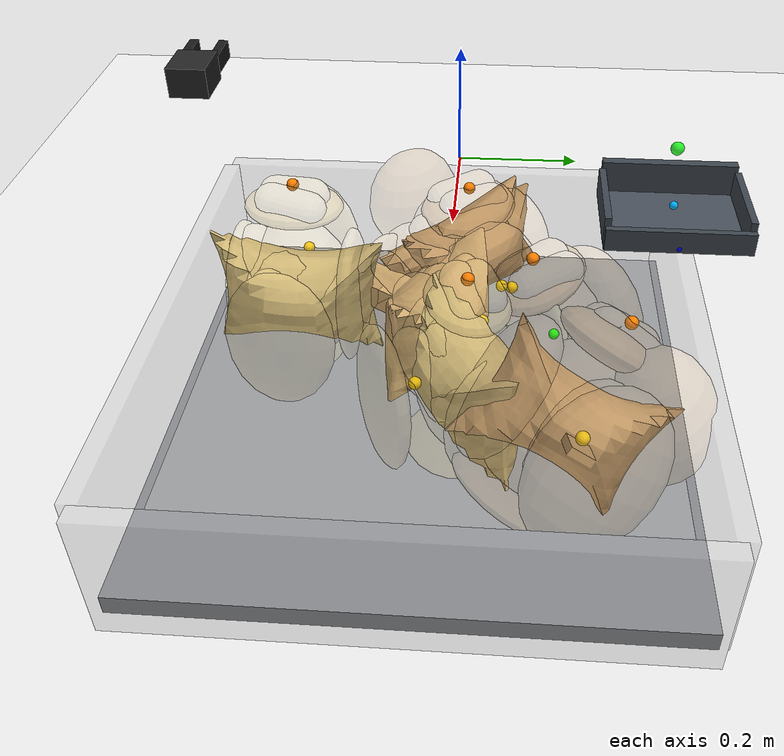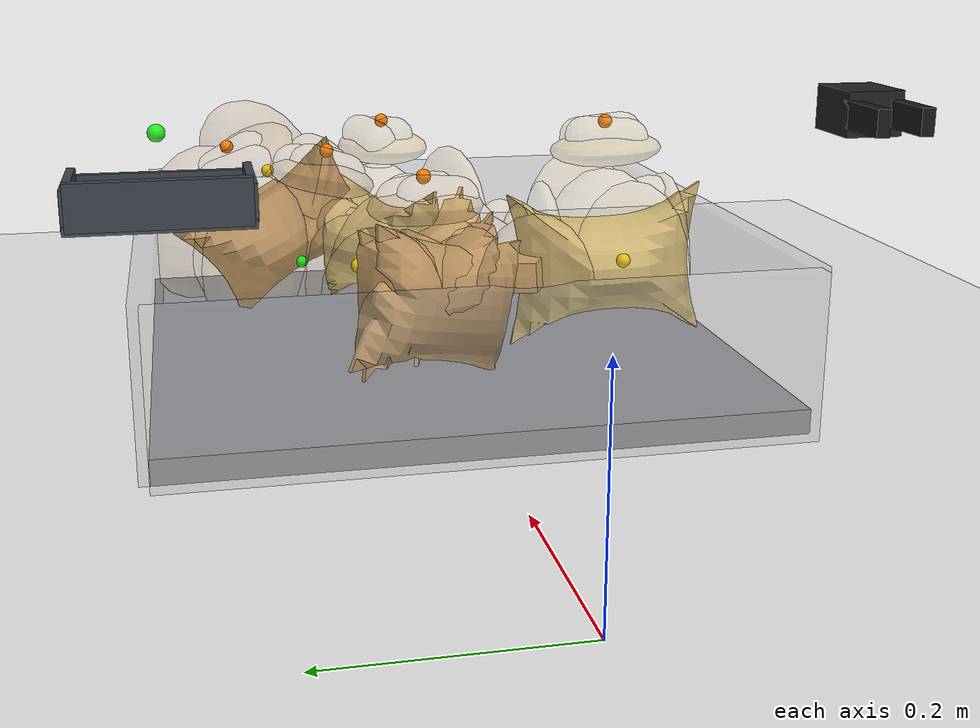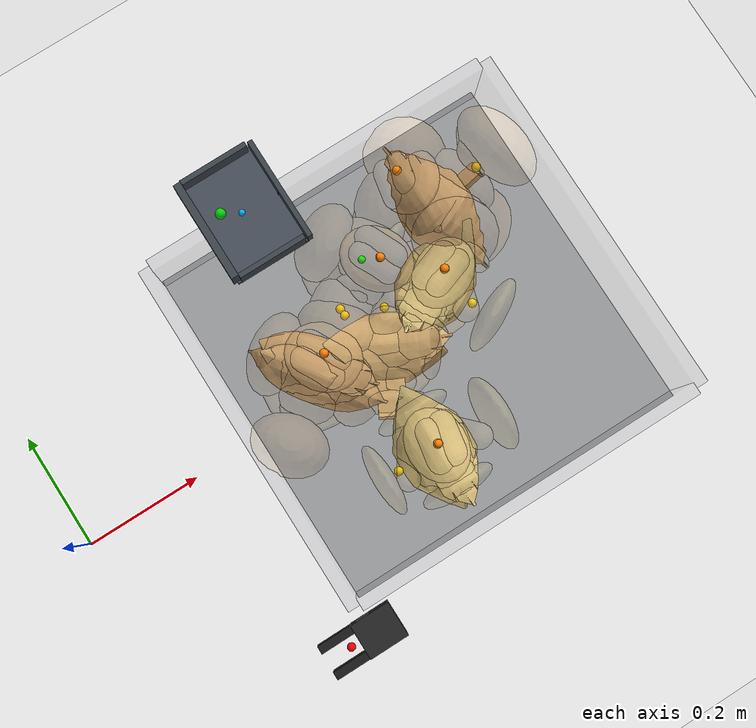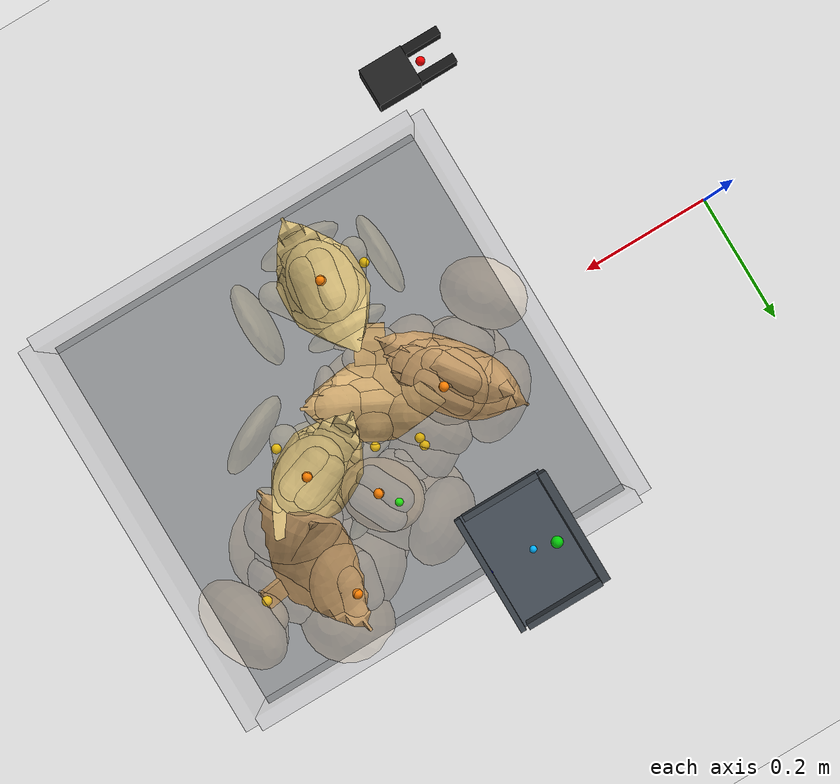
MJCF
<mujoco model="eccentric_fill_seed12">
  <compiler angle="radian" coordinate="local" inertiafromgeom="true" meshdir="D:/Michael/2025/01.Research/01.Parceldetection/16.Pybullet/bullet3-master (1)/bullet3-master/examples/pybullet/examples/DeformableTest/Sackcodex2/object"/>
  <option timestep="0.002" gravity="0 0 -9.81" integrator="implicitfast" iterations="100" tolerance="1e-8"/>
  <size memory="768M" nconmax="12000"/>

  <visual>
    <global azimuth="128" elevation="-20" offwidth="1280" offheight="720"/>
    <headlight ambient="0.34 0.34 0.34" diffuse="0.78 0.78 0.78" specular="0.15 0.15 0.15"/>
    <rgba haze="0.11 0.13 0.18 1"/>
  </visual>

  <default>
    <geom condim="4" friction="1.15 0.03 0.01" margin="0.003" solimp="0.93 0.98 0.003" solref="0.012 1"/>
    <joint damping="1.2" armature="0.002"/>
    <position kp="2500" forcelimited="true" forcerange="-420 420"/>
    <motor ctrllimited="true"/>
  </default>

  <asset>
    <mesh name="sack_0_visual_mesh" file="sack3.obj" scale="0.0731 0.0731 0.0752"/>
    <mesh name="sack_1_visual_mesh" file="sack10.obj" scale="0.0712 0.0712 0.0726"/>
    <mesh name="sack_2_visual_mesh" file="sack6Apply.obj" scale="0.0698 0.0698 0.0739"/>
    <mesh name="sack_3_visual_mesh" file="sack8.obj" scale="0.0731 0.0731 0.0796"/>
    <mesh name="sack_4_visual_mesh" file="sack8.obj" scale="0.0749 0.0749 0.0827"/>
    <mesh name="sack_5_visual_mesh" file="sack9.obj" scale="0.0736 0.0736 0.0767"/>
  </asset>

  <worldbody>
    <light name="key" pos="0.85 0.15 1.8" dir="-0.2 -0.1 -1" directional="true"/>
    <geom name="floor" type="plane" size="2 2 0.1" rgba="0.93 0.93 0.93 1"/>
    <geom name="work_pad" type="box" pos="0.62 0 0.012" size="0.30 0.30 0.012" rgba="0.60 0.61 0.62 1" friction="1.4 0.05 0.01"/>
    <geom name="corral_front" type="box" pos="0.93 0.00 0.08" size="0.010 0.30 0.08" rgba="0.55 0.55 0.58 0.22" friction="1.0 0.03 0.01"/>
    <geom name="corral_back" type="box" pos="0.31 0.00 0.08" size="0.010 0.30 0.08" rgba="0.55 0.55 0.58 0.18" friction="1.0 0.03 0.01"/>
    <geom name="corral_left" type="box" pos="0.62 0.30 0.08" size="0.30 0.010 0.08" rgba="0.55 0.55 0.58 0.14" friction="1.0 0.03 0.01"/>
    <geom name="corral_right" type="box" pos="0.62 -0.30 0.08" size="0.30 0.010 0.08" rgba="0.55 0.55 0.58 0.14" friction="1.0 0.03 0.01"/>
    <camera name="overview" pos="1.22 0.00 0.92" xyaxes="0 1 0 -0.46 0 0.88"/>

    <body name="gripper_mocap" mocap="true" pos="0.36 -0.33 0.30" quat="0.707107 0 -0.707107 0"/>
    <body name="scoop_mocap" mocap="true" pos="0.42 0.28 0.20" quat="1 0 0 0"/>

    <body name="gripper_ctrl_base" pos="0.36 -0.33 0.30">
      <inertial pos="0 0 0" mass="0.001" diaginertia="1e-6 1e-6 1e-6"/>
      <joint name="gripper_ctrl_x" type="slide" axis="1 0 0" limited="true" range="0.20 1.00"/>
      <body name="gripper_ctrl_y_body">
        <inertial pos="0 0 0" mass="0.001" diaginertia="1e-6 1e-6 1e-6"/>
        <joint name="gripper_ctrl_y" type="slide" axis="0 1 0" limited="true" range="-0.60 0.60"/>
        <body name="gripper_ctrl_z_body">
          <inertial pos="0 0 0" mass="0.001" diaginertia="1e-6 1e-6 1e-6"/>
          <joint name="gripper_ctrl_z" type="slide" axis="0 0 1" limited="true" range="0.04 0.70"/>
          <body name="gripper_ctrl_yaw_body">
            <inertial pos="0 0 0" mass="0.001" diaginertia="1e-6 1e-6 1e-6"/>
            <joint name="gripper_ctrl_yaw" type="hinge" axis="0 0 1" limited="true" range="-3.1416 3.1416"/>
            <body name="gripper_ctrl_pitch_body">
              <inertial pos="0 0 0" mass="0.001" diaginertia="1e-6 1e-6 1e-6"/>
              <joint name="gripper_ctrl_pitch" type="hinge" axis="0 1 0" limited="true" range="-3.1416 3.1416"/>
              <body name="gripper_ctrl_roll_body">
                <inertial pos="0 0 0" mass="0.001" diaginertia="1e-6 1e-6 1e-6"/>
                <joint name="gripper_ctrl_roll" type="hinge" axis="1 0 0" limited="true" range="-3.1416 3.1416"/>
              </body>
            </body>
          </body>
        </body>
      </body>
    </body>

    <body name="scoop_ctrl_base" pos="0.42 0.28 0.20">
      <inertial pos="0 0 0" mass="0.001" diaginertia="1e-6 1e-6 1e-6"/>
      <joint name="scoop_ctrl_x" type="slide" axis="1 0 0" limited="true" range="0.20 1.00"/>
      <body name="scoop_ctrl_y_body">
        <inertial pos="0 0 0" mass="0.001" diaginertia="1e-6 1e-6 1e-6"/>
        <joint name="scoop_ctrl_y" type="slide" axis="0 1 0" limited="true" range="-0.60 0.60"/>
        <body name="scoop_ctrl_z_body">
          <inertial pos="0 0 0" mass="0.001" diaginertia="1e-6 1e-6 1e-6"/>
          <joint name="scoop_ctrl_z" type="slide" axis="0 0 1" limited="true" range="0.04 0.70"/>
          <body name="scoop_ctrl_yaw_body">
            <inertial pos="0 0 0" mass="0.001" diaginertia="1e-6 1e-6 1e-6"/>
            <joint name="scoop_ctrl_yaw" type="hinge" axis="0 0 1" limited="true" range="-3.1416 3.1416"/>
            <body name="scoop_ctrl_pitch_body">
              <inertial pos="0 0 0" mass="0.001" diaginertia="1e-6 1e-6 1e-6"/>
              <joint name="scoop_ctrl_pitch" type="hinge" axis="0 1 0" limited="true" range="-3.1416 3.1416"/>
              <body name="scoop_ctrl_roll_body">
                <inertial pos="0 0 0" mass="0.001" diaginertia="1e-6 1e-6 1e-6"/>
                <joint name="scoop_ctrl_roll" type="hinge" axis="1 0 0" limited="true" range="-3.1416 3.1416"/>
              </body>
            </body>
          </body>
        </body>
      </body>
    </body>

    <body name="gripper_tool" pos="0.36 -0.33 0.30" quat="0.707107 0 -0.707107 0">
      <freejoint name="gripper_tool_free"/>
      <inertial pos="0 0 0.04" mass="0.08" diaginertia="0.0002 0.0002 0.0002"/>
      <geom name="gripper_palm" type="box" pos="0 0 0.030" size="0.020 0.026 0.030" rgba="0.14 0.14 0.14 1"/>
      <body name="left_finger_body" pos="0 0 0.072">
        <joint name="left_finger_slide" type="slide" axis="0 1 0" limited="true" range="0.010 0.040" damping="12"/>
        <geom name="left_finger_geom" type="box" pos="0 0.020 0" size="0.012 0.006 0.040" rgba="0.10 0.10 0.10 1" friction="2.2 0.05 0.01"/>
      </body>
      <body name="right_finger_body" pos="0 0 0.072">
        <joint name="right_finger_slide" type="slide" axis="0 -1 0" limited="true" range="0.010 0.040" damping="12"/>
        <geom name="right_finger_geom" type="box" pos="0 -0.020 0" size="0.012 0.006 0.040" rgba="0.10 0.10 0.10 1" friction="2.2 0.05 0.01"/>
      </body>
      <site name="gripper_pinch_site" pos="0 0 0.074" size="0.006" rgba="1 0 0 1"/>
    </body>

    <body name="scoop_tool" pos="0.42 0.28 0.20" quat="1 0 0 0">
      <freejoint name="scoop_tool_free"/>
      <inertial pos="0 0 0.02" mass="0.10" diaginertia="0.0003 0.0003 0.0003"/>
      <geom name="scoop_plate" type="box" pos="0.062 0 0" size="0.062 0.085 0.004" rgba="0.28 0.31 0.35 1" friction="1.7 0.05 0.01"/>
      <geom name="scoop_lip" type="box" pos="0.126 0 0.014" size="0.004 0.085 0.014" rgba="0.24 0.27 0.30 1" friction="1.7 0.05 0.01"/>
      <geom name="scoop_left_rail" type="box" pos="0.062 0.082 0.018" size="0.056 0.004 0.018" rgba="0.24 0.27 0.30 1"/>
      <geom name="scoop_right_rail" type="box" pos="0.062 -0.082 0.018" size="0.056 0.004 0.018" rgba="0.24 0.27 0.30 1"/>
      <geom name="scoop_backstop" type="box" pos="0.000 0 0.022" size="0.006 0.082 0.022" rgba="0.24 0.27 0.30 1"/>
      <site name="scoop_tip_site" pos="0.126 0 0.005" size="0.005" rgba="0 0 1 1"/>
      <site name="scoop_center_site" pos="0.060 0 0.020" size="0.005" rgba="0 0.7 1 1"/>
      <site name="score_overlay_site" pos="0.030 0 0.080" size="0.008" rgba="0 1 0 0.8"/>
    </body>

    <body name="sack_0" pos="0.6038 0.1422 0.1172" euler="0.2250 0.1212 -0.9438">
      <freejoint name="sack_0_free"/>

      <geom name="sack_0_visual" type="mesh" mesh="sack_0_visual_mesh" rgba="0.760 0.600 0.400 0.92" contype="0" conaffinity="0"/>
      <site name="sack_0_center_site" pos="0 0 0.000" size="0.006" rgba="0 1 0 1"/>
      <site name="sack_0_top_site" pos="0.0014 -0.0043 0.1181" size="0.007" rgba="1 0.5 0 1"/>
      <site name="sack_0_side_site" pos="0.0036 -0.0929 0.018" size="0.007" rgba="1 0.8 0 1"/>

      <geom name="sack_0_core_geom" type="ellipsoid" pos="0 0 0.0059" size="0.0431 0.0340 0.0742" mass="0.8147" rgba="0.760 0.600 0.400 0.12" friction="1.0 0.03 0.01"/>
      <geom name="sack_0_core_front" type="capsule" fromto="-0.0204 0 -0.0180 0.0536 0 0.0580" size="0.0286" mass="0.1940" rgba="0.760 0.600 0.400 0.10"/>
      <geom name="sack_0_core_left" type="capsule" fromto="-0.016 0.0648 -0.012 0.020 0.1249 0.054" size="0.0209" mass="0.3492" rgba="0.760 0.600 0.400 0.10"/>
      <geom name="sack_0_core_right" type="capsule" fromto="-0.016 -0.0648 -0.012 0.020 -0.1249 0.054" size="0.0187" mass="0.3492" rgba="0.760 0.600 0.400 0.10"/>

      <!-- 자루의 외형은 둥근 shell lobe로 보이게 하고, contact proxy는 반투명하게 숨긴다. -->
      <geom name="sack_0_shell_main_visual" type="ellipsoid" pos="0.0018 0.0029 -0.0030" size="0.0714 0.0636 0.0933" rgba="0.760 0.600 0.400 0.16" contype="0" conaffinity="0"/>
      <geom name="sack_0_shell_left_visual" type="ellipsoid" pos="0.0040 0.1006 0.0020" size="0.0485 0.0675 0.0765" rgba="0.760 0.600 0.400 0.14" contype="0" conaffinity="0"/>
      <geom name="sack_0_shell_right_visual" type="ellipsoid" pos="0.0040 -0.0410 0.0000" size="0.0457 0.0374 0.0746" rgba="0.760 0.600 0.400 0.12" contype="0" conaffinity="0"/>
      <geom name="sack_0_top_left_crown_visual" type="capsule" fromto="-0.0227 0.0161 0.0982 0.0227 0.0081 0.1022" size="0.0207" rgba="0.760 0.600 0.400 0.14" contype="0" conaffinity="0"/>
      <geom name="sack_0_top_right_crown_visual" type="capsule" fromto="-0.0227 -0.0081 0.1022 0.0227 -0.0161 0.0982" size="0.0207" rgba="0.760 0.600 0.400 0.14" contype="0" conaffinity="0"/>

      <body name="sack_0_bottom_support_proxy_body" pos="0.0006 -0.0119 -0.0930">
        <joint name="sack_0_bottom_x" type="slide" axis="1 0 0" limited="true" range="-0.012 0.012" damping="18" stiffness="449.0"/>
        <joint name="sack_0_bottom_y" type="slide" axis="0 1 0" limited="true" range="-0.012 0.012" damping="18" stiffness="449.0"/>
        <joint name="sack_0_bottom_z" type="slide" axis="0 0 1" limited="true" range="-0.008 0.020" damping="24" stiffness="553.2"/>
        <geom name="sack_0_bottom_support_proxy" type="ellipsoid" size="0.0724 0.0648 0.0144" mass="0.1552" rgba="0.760 0.600 0.400 0.10" friction="1.55 0.05 0.01"/>
        <geom name="sack_0_bottom_deform_visual" type="ellipsoid" size="0.0771 0.0708 0.0187" rgba="0.760 0.600 0.400 0.22" contype="0" conaffinity="0"/>
      </body>

      <body name="sack_0_top_grasp_proxy_body" pos="0.0036 -0.0040 0.0901">
        <joint name="sack_0_top_x" type="slide" axis="1 0 0" limited="true" range="-0.018 0.018" damping="12" stiffness="172.4"/>
        <joint name="sack_0_top_y" type="slide" axis="0 1 0" limited="true" range="-0.018 0.018" damping="12" stiffness="172.4"/>
        <joint name="sack_0_top_z" type="slide" axis="0 0 1" limited="true" range="-0.040 0.010" damping="14" stiffness="126.3"/>
        <geom name="sack_0_top_grasp_proxy" type="ellipsoid" size="0.0567 0.0448 0.0152" mass="0.1164" rgba="0.760 0.600 0.400 0.10" friction="2.2 0.05 0.01"/>
        <geom name="sack_0_top_deform_visual" type="ellipsoid" size="0.0589 0.0484 0.0199" rgba="0.760 0.600 0.400 0.36" contype="0" conaffinity="0"/>
        <geom name="sack_0_top_fold_left_visual" type="capsule" fromto="-0.0272 0.0125 0.000 0.0057 0.0036 0.0121" size="0.0149" rgba="0.760 0.600 0.400 0.26" contype="0" conaffinity="0"/>
        <geom name="sack_0_top_fold_right_visual" type="capsule" fromto="-0.0068 -0.0036 0.0121 0.0272 -0.0125 0.000" size="0.0149" rgba="0.760 0.600 0.400 0.26" contype="0" conaffinity="0"/>
      </body>

      <body name="sack_0_left_side_proxy_body" pos="0.0006 0.1754 0.010">
        <joint name="sack_0_left_side_slide" type="slide" axis="0 -1 0" limited="true" range="-0.028 0.016" damping="16" stiffness="222.2"/>
        <geom name="sack_0_left_side_proxy" type="ellipsoid" size="0.0627 0.0541 0.0850" mass="0.1164" rgba="0.760 0.600 0.400 0.08" friction="1.25 0.04 0.01"/>
        <geom name="sack_0_left_side_deform_visual" type="ellipsoid" size="0.0645 0.0584 0.0867" rgba="0.760 0.600 0.400 0.24" contype="0" conaffinity="0"/>
      </body>

      <body name="sack_0_right_side_proxy_body" pos="0.0006 -0.1158 0.010">
        <joint name="sack_0_right_side_slide" type="slide" axis="0 1 0" limited="true" range="-0.028 0.016" damping="16" stiffness="206.1"/>
        <geom name="sack_0_right_side_proxy" type="ellipsoid" size="0.0602 0.0422 0.0833" mass="0.1164" rgba="0.760 0.600 0.400 0.08" friction="1.25 0.04 0.01"/>
        <geom name="sack_0_right_side_deform_visual" type="ellipsoid" size="0.0620 0.0465 0.0850" rgba="0.760 0.600 0.400 0.24" contype="0" conaffinity="0"/>
      </body>

      <body name="sack_0_front_proxy_body" pos="0.0703 0.0009 0.000">
        <joint name="sack_0_front_slide" type="slide" axis="-1 0 0" limited="true" range="-0.022 0.012" damping="15" stiffness="214.5"/>
        <geom name="sack_0_front_support_proxy" type="ellipsoid" size="0.0421 0.0628 0.0810" mass="0.0970" rgba="0.760 0.600 0.400 0.08" friction="1.20 0.04 0.01"/>
        <geom name="sack_0_front_deform_visual" type="ellipsoid" size="0.0429 0.0641 0.0826" rgba="0.760 0.600 0.400 0.20" contype="0" conaffinity="0"/>
      </body>

      <body name="sack_0_back_proxy_body" pos="-0.0652 0.0009 0.000">
        <joint name="sack_0_back_slide" type="slide" axis="1 0 0" limited="true" range="-0.022 0.012" damping="15" stiffness="198.4"/>
        <geom name="sack_0_back_support_proxy" type="ellipsoid" size="0.0387 0.0628 0.0810" mass="0.0970" rgba="0.760 0.600 0.400 0.08" friction="1.20 0.04 0.01"/>
        <geom name="sack_0_back_deform_visual" type="ellipsoid" size="0.0404 0.0641 0.0826" rgba="0.760 0.600 0.400 0.20" contype="0" conaffinity="0"/>
      </body>

      <body name="sack_0_shape_proxy_body" pos="0.0022 -0.1053 0.0385">
        <joint name="sack_0_bulge_y" type="slide" axis="0 1 0" limited="true" range="-0.020 0.020" damping="8" stiffness="107.3"/>
        <joint name="sack_0_bulge_z" type="slide" axis="0 0 1" limited="true" range="-0.014 0.028" damping="8" stiffness="105.5"/>
        <geom name="sack_0_shape_proxy" type="ellipsoid" size="0.0251 0.0222 0.0312" mass="0.0776" rgba="0.760 0.600 0.400 0.10"/>
        <geom name="sack_0_shape_deform_visual" type="ellipsoid" size="0.0294 0.0266 0.0359" rgba="0.760 0.600 0.400 0.32" contype="0" conaffinity="0"/>
      </body>
    </body>

    <body name="sack_1" pos="0.5638 0.0046 0.1090" euler="-0.0691 0.0129 -0.4825">
      <freejoint name="sack_1_free"/>

      <geom name="sack_1_visual" type="mesh" mesh="sack_1_visual_mesh" rgba="0.820 0.670 0.440 0.92" contype="0" conaffinity="0"/>
      <site name="sack_1_center_site" pos="0 0 0.000" size="0.006" rgba="0 1 0 1"/>
      <site name="sack_1_top_site" pos="0.0001 0.0057 -0.0157" size="0.007" rgba="1 0.5 0 1"/>
      <site name="sack_1_side_site" pos="0.0003 0.0607 0.018" size="0.007" rgba="1 0.8 0 1"/>

      <geom name="sack_1_core_geom" type="ellipsoid" pos="0 0 0.0054" size="0.0449 0.0357 0.0628" mass="0.7081" rgba="0.820 0.670 0.440 0.12" friction="1.0 0.03 0.01"/>
      <geom name="sack_1_core_front" type="capsule" fromto="-0.0237 0 -0.0180 0.0503 0 0.0580" size="0.0283" mass="0.1686" rgba="0.820 0.670 0.440 0.10"/>
      <geom name="sack_1_core_left" type="capsule" fromto="-0.016 0.0379 -0.012 0.020 0.0635 0.054" size="0.0202" mass="0.3035" rgba="0.820 0.670 0.440 0.10"/>
      <geom name="sack_1_core_right" type="capsule" fromto="-0.016 -0.0379 -0.012 0.020 -0.0635 0.054" size="0.0181" mass="0.3035" rgba="0.820 0.670 0.440 0.10"/>

      <!-- 자루의 외형은 둥근 shell lobe로 보이게 하고, contact proxy는 반투명하게 숨긴다. -->
      <geom name="sack_1_shell_main_visual" type="ellipsoid" pos="0.0001 -0.0006 -0.0312" size="0.0681 0.0555 0.0727" rgba="0.820 0.670 0.440 0.16" contype="0" conaffinity="0"/>
      <geom name="sack_1_shell_left_visual" type="ellipsoid" pos="0.0040 0.0323 0.0020" size="0.0463 0.0253 0.0596" rgba="0.820 0.670 0.440 0.14" contype="0" conaffinity="0"/>
      <geom name="sack_1_shell_right_visual" type="ellipsoid" pos="0.0040 -0.0211 0.0000" size="0.0436 0.0182 0.0582" rgba="0.820 0.670 0.440 0.12" contype="0" conaffinity="0"/>
      <geom name="sack_1_top_left_crown_visual" type="capsule" fromto="-0.0213 0.0128 -0.0578 0.0213 0.0064 -0.0538" size="0.0204" rgba="0.820 0.670 0.440 0.14" contype="0" conaffinity="0"/>
      <geom name="sack_1_top_right_crown_visual" type="capsule" fromto="-0.0213 -0.0064 -0.0538 0.0213 -0.0128 -0.0578" size="0.0204" rgba="0.820 0.670 0.440 0.14" contype="0" conaffinity="0"/>

      <body name="sack_1_bottom_support_proxy_body" pos="0.0001 -0.0153 -0.0693">
        <joint name="sack_1_bottom_x" type="slide" axis="1 0 0" limited="true" range="-0.012 0.012" damping="18" stiffness="439.3"/>
        <joint name="sack_1_bottom_y" type="slide" axis="0 1 0" limited="true" range="-0.012 0.012" damping="18" stiffness="439.3"/>
        <joint name="sack_1_bottom_z" type="slide" axis="0 0 1" limited="true" range="-0.008 0.020" damping="24" stiffness="541.4"/>
        <geom name="sack_1_bottom_support_proxy" type="ellipsoid" size="0.0693 0.0556 0.0147" mass="0.1349" rgba="0.820 0.670 0.440 0.10" friction="1.55 0.05 0.01"/>
        <geom name="sack_1_bottom_deform_visual" type="ellipsoid" size="0.0738 0.0616 0.0191" rgba="0.820 0.670 0.440 0.22" contype="0" conaffinity="0"/>
      </body>

      <body name="sack_1_top_grasp_proxy_body" pos="0.0003 0.0056 -0.0437">
        <joint name="sack_1_top_x" type="slide" axis="1 0 0" limited="true" range="-0.018 0.018" damping="12" stiffness="168.6"/>
        <joint name="sack_1_top_y" type="slide" axis="0 1 0" limited="true" range="-0.018 0.018" damping="12" stiffness="168.6"/>
        <joint name="sack_1_top_z" type="slide" axis="0 0 1" limited="true" range="-0.040 0.010" damping="14" stiffness="123.1"/>
        <geom name="sack_1_top_grasp_proxy" type="ellipsoid" size="0.0533 0.0356 0.0333" mass="0.1012" rgba="0.820 0.670 0.440 0.10" friction="2.2 0.05 0.01"/>
        <geom name="sack_1_top_deform_visual" type="ellipsoid" size="0.0554 0.0385 0.0421" rgba="0.820 0.670 0.440 0.36" contype="0" conaffinity="0"/>
        <geom name="sack_1_top_fold_left_visual" type="capsule" fromto="-0.0256 0.0100 0.000 0.0053 0.0029 0.0242" size="0.0147" rgba="0.820 0.670 0.440 0.26" contype="0" conaffinity="0"/>
        <geom name="sack_1_top_fold_right_visual" type="capsule" fromto="-0.0064 -0.0029 0.0242 0.0256 -0.0100 0.000" size="0.0147" rgba="0.820 0.670 0.440 0.26" contype="0" conaffinity="0"/>
      </body>

      <body name="sack_1_left_side_proxy_body" pos="0.0000 0.0980 0.010">
        <joint name="sack_1_left_side_slide" type="slide" axis="0 -1 0" limited="true" range="-0.028 0.016" damping="16" stiffness="214.2"/>
        <geom name="sack_1_left_side_proxy" type="ellipsoid" size="0.0593 0.0196 0.0613" mass="0.1012" rgba="0.820 0.670 0.440 0.08" friction="1.25 0.04 0.01"/>
        <geom name="sack_1_left_side_deform_visual" type="ellipsoid" size="0.0611 0.0211 0.0625" rgba="0.820 0.670 0.440 0.24" contype="0" conaffinity="0"/>
      </body>

      <body name="sack_1_right_side_proxy_body" pos="0.0000 -0.0867 0.010">
        <joint name="sack_1_right_side_slide" type="slide" axis="0 1 0" limited="true" range="-0.028 0.016" damping="16" stiffness="198.7"/>
        <geom name="sack_1_right_side_proxy" type="ellipsoid" size="0.0569 0.0153 0.0600" mass="0.1012" rgba="0.820 0.670 0.440 0.08" friction="1.25 0.04 0.01"/>
        <geom name="sack_1_right_side_deform_visual" type="ellipsoid" size="0.0587 0.0168 0.0613" rgba="0.820 0.670 0.440 0.24" contype="0" conaffinity="0"/>
      </body>

      <body name="sack_1_front_proxy_body" pos="0.0636 -0.0002 0.000">
        <joint name="sack_1_front_slide" type="slide" axis="-1 0 0" limited="true" range="-0.022 0.012" damping="15" stiffness="209.7"/>
        <geom name="sack_1_front_support_proxy" type="ellipsoid" size="0.0191 0.0536 0.0573" mass="0.0843" rgba="0.820 0.670 0.440 0.08" friction="1.20 0.04 0.01"/>
        <geom name="sack_1_front_deform_visual" type="ellipsoid" size="0.0194 0.0547 0.0584" rgba="0.820 0.670 0.440 0.20" contype="0" conaffinity="0"/>
      </body>

      <body name="sack_1_back_proxy_body" pos="-0.0632 -0.0002 0.000">
        <joint name="sack_1_back_slide" type="slide" axis="1 0 0" limited="true" range="-0.022 0.012" damping="15" stiffness="194.2"/>
        <geom name="sack_1_back_support_proxy" type="ellipsoid" size="0.0175 0.0536 0.0573" mass="0.0843" rgba="0.820 0.670 0.440 0.08" friction="1.20 0.04 0.01"/>
        <geom name="sack_1_back_deform_visual" type="ellipsoid" size="0.0183 0.0547 0.0584" rgba="0.820 0.670 0.440 0.20" contype="0" conaffinity="0"/>
      </body>

      <body name="sack_1_shape_proxy_body" pos="0.0002 0.0304 0.0413">
        <joint name="sack_1_bulge_y" type="slide" axis="0 1 0" limited="true" range="-0.020 0.020" damping="8" stiffness="113.8"/>
        <joint name="sack_1_bulge_z" type="slide" axis="0 0 1" limited="true" range="-0.014 0.028" damping="8" stiffness="110.3"/>
        <geom name="sack_1_shape_proxy" type="ellipsoid" size="0.0242 0.0204 0.0493" mass="0.0674" rgba="0.820 0.670 0.440 0.10"/>
        <geom name="sack_1_shape_deform_visual" type="ellipsoid" size="0.0283 0.0245 0.0581" rgba="0.820 0.670 0.440 0.32" contype="0" conaffinity="0"/>
      </body>
    </body>

    <body name="sack_2" pos="0.4528 0.0347 0.1189" euler="0.0064 0.1116 -0.9026">
      <freejoint name="sack_2_free"/>

      <geom name="sack_2_visual" type="mesh" mesh="sack_2_visual_mesh" rgba="0.760 0.600 0.400 0.92" contype="0" conaffinity="0"/>
      <site name="sack_2_center_site" pos="0 0 0.000" size="0.006" rgba="0 1 0 1"/>
      <site name="sack_2_top_site" pos="0.0013 0.0060 0.1103" size="0.007" rgba="1 0.5 0 1"/>
      <site name="sack_2_side_site" pos="0.0033 0.0977 0.018" size="0.007" rgba="1 0.8 0 1"/>

      <geom name="sack_2_core_geom" type="ellipsoid" pos="0 0 0.0058" size="0.0439 0.0352 0.0761" mass="0.7636" rgba="0.760 0.600 0.400 0.12" friction="1.0 0.03 0.01"/>
      <geom name="sack_2_core_front" type="capsule" fromto="-0.0207 0 -0.0180 0.0533 0 0.0580" size="0.0296" mass="0.1818" rgba="0.760 0.600 0.400 0.10"/>
      <geom name="sack_2_core_left" type="capsule" fromto="-0.016 0.0663 -0.012 0.020 0.1284 0.054" size="0.0210" mass="0.3272" rgba="0.760 0.600 0.400 0.10"/>
      <geom name="sack_2_core_right" type="capsule" fromto="-0.016 -0.0663 -0.012 0.020 -0.1284 0.054" size="0.0188" mass="0.3272" rgba="0.760 0.600 0.400 0.10"/>

      <!-- 자루의 외형은 둥근 shell lobe로 보이게 하고, contact proxy는 반투명하게 숨긴다. -->
      <geom name="sack_2_shell_main_visual" type="ellipsoid" pos="0.0017 0.0001 -0.0039" size="0.0723 0.0665 0.0826" rgba="0.760 0.600 0.400 0.16" contype="0" conaffinity="0"/>
      <geom name="sack_2_shell_left_visual" type="ellipsoid" pos="0.0040 0.0986 0.0020" size="0.0492 0.0699 0.0678" rgba="0.760 0.600 0.400 0.14" contype="0" conaffinity="0"/>
      <geom name="sack_2_shell_right_visual" type="ellipsoid" pos="0.0040 -0.0482 0.0000" size="0.0463 0.0385 0.0661" rgba="0.760 0.600 0.400 0.12" contype="0" conaffinity="0"/>
      <geom name="sack_2_top_left_crown_visual" type="capsule" fromto="-0.0231 0.0174 0.0897 0.0231 0.0087 0.0937" size="0.0207" rgba="0.760 0.600 0.400 0.14" contype="0" conaffinity="0"/>
      <geom name="sack_2_top_right_crown_visual" type="capsule" fromto="-0.0231 -0.0087 0.0937 0.0231 -0.0174 0.0897" size="0.0207" rgba="0.760 0.600 0.400 0.14" contype="0" conaffinity="0"/>

      <body name="sack_2_bottom_support_proxy_body" pos="0.0006 -0.0146 -0.0805">
        <joint name="sack_2_bottom_x" type="slide" axis="1 0 0" limited="true" range="-0.012 0.012" damping="18" stiffness="479.4"/>
        <joint name="sack_2_bottom_y" type="slide" axis="0 1 0" limited="true" range="-0.012 0.012" damping="18" stiffness="479.4"/>
        <joint name="sack_2_bottom_z" type="slide" axis="0 0 1" limited="true" range="-0.008 0.020" damping="24" stiffness="590.3"/>
        <geom name="sack_2_bottom_support_proxy" type="ellipsoid" size="0.0733 0.0683 0.0134" mass="0.1454" rgba="0.760 0.600 0.400 0.10" friction="1.55 0.05 0.01"/>
        <geom name="sack_2_bottom_deform_visual" type="ellipsoid" size="0.0781 0.0743 0.0174" rgba="0.760 0.600 0.400 0.22" contype="0" conaffinity="0"/>
      </body>

      <body name="sack_2_top_grasp_proxy_body" pos="0.0033 0.0061 0.0823">
        <joint name="sack_2_top_x" type="slide" axis="1 0 0" limited="true" range="-0.018 0.018" damping="12" stiffness="184.2"/>
        <joint name="sack_2_top_y" type="slide" axis="0 1 0" limited="true" range="-0.018 0.018" damping="12" stiffness="184.2"/>
        <joint name="sack_2_top_z" type="slide" axis="0 0 1" limited="true" range="-0.040 0.010" damping="14" stiffness="136.5"/>
        <geom name="sack_2_top_grasp_proxy" type="ellipsoid" size="0.0577 0.0483 0.0158" mass="0.1091" rgba="0.760 0.600 0.400 0.10" friction="2.2 0.05 0.01"/>
        <geom name="sack_2_top_deform_visual" type="ellipsoid" size="0.0600 0.0521 0.0206" rgba="0.760 0.600 0.400 0.36" contype="0" conaffinity="0"/>
        <geom name="sack_2_top_fold_left_visual" type="capsule" fromto="-0.0277 0.0135 0.000 0.0058 0.0039 0.0125" size="0.0149" rgba="0.760 0.600 0.400 0.26" contype="0" conaffinity="0"/>
        <geom name="sack_2_top_fold_right_visual" type="capsule" fromto="-0.0069 -0.0039 0.0125 0.0277 -0.0135 0.000" size="0.0149" rgba="0.760 0.600 0.400 0.26" contype="0" conaffinity="0"/>
      </body>

      <body name="sack_2_left_side_proxy_body" pos="0.0005 0.1769 0.010">
        <joint name="sack_2_left_side_slide" type="slide" axis="0 -1 0" limited="true" range="-0.028 0.016" damping="16" stiffness="242.4"/>
        <geom name="sack_2_left_side_proxy" type="ellipsoid" size="0.0637 0.0561 0.0725" mass="0.1091" rgba="0.760 0.600 0.400 0.08" friction="1.25 0.04 0.01"/>
        <geom name="sack_2_left_side_deform_visual" type="ellipsoid" size="0.0656 0.0606 0.0740" rgba="0.760 0.600 0.400 0.24" contype="0" conaffinity="0"/>
      </body>

      <body name="sack_2_right_side_proxy_body" pos="0.0005 -0.1264 0.010">
        <joint name="sack_2_right_side_slide" type="slide" axis="0 1 0" limited="true" range="-0.028 0.016" damping="16" stiffness="224.6"/>
        <geom name="sack_2_right_side_proxy" type="ellipsoid" size="0.0612 0.0438 0.0711" mass="0.1091" rgba="0.760 0.600 0.400 0.08" friction="1.25 0.04 0.01"/>
        <geom name="sack_2_right_side_deform_visual" type="ellipsoid" size="0.0631 0.0483 0.0725" rgba="0.760 0.600 0.400 0.24" contype="0" conaffinity="0"/>
      </body>

      <body name="sack_2_front_proxy_body" pos="0.0710 0.0000 0.000">
        <joint name="sack_2_front_slide" type="slide" axis="-1 0 0" limited="true" range="-0.022 0.012" damping="15" stiffness="229.7"/>
        <geom name="sack_2_front_support_proxy" type="ellipsoid" size="0.0434 0.0663 0.0685" mass="0.0909" rgba="0.760 0.600 0.400 0.08" friction="1.20 0.04 0.01"/>
        <geom name="sack_2_front_deform_visual" type="ellipsoid" size="0.0443 0.0676 0.0699" rgba="0.760 0.600 0.400 0.20" contype="0" conaffinity="0"/>
      </body>

      <body name="sack_2_back_proxy_body" pos="-0.0664 0.0000 0.000">
        <joint name="sack_2_back_slide" type="slide" axis="1 0 0" limited="true" range="-0.022 0.012" damping="15" stiffness="211.9"/>
        <geom name="sack_2_back_support_proxy" type="ellipsoid" size="0.0399 0.0663 0.0685" mass="0.0909" rgba="0.760 0.600 0.400 0.08" friction="1.20 0.04 0.01"/>
        <geom name="sack_2_back_deform_visual" type="ellipsoid" size="0.0417 0.0676 0.0699" rgba="0.760 0.600 0.400 0.20" contype="0" conaffinity="0"/>
      </body>

      <body name="sack_2_shape_proxy_body" pos="0.0020 0.1121 0.0297">
        <joint name="sack_2_bulge_y" type="slide" axis="0 1 0" limited="true" range="-0.020 0.020" damping="8" stiffness="87.1"/>
        <joint name="sack_2_bulge_z" type="slide" axis="0 0 1" limited="true" range="-0.014 0.028" damping="8" stiffness="90.3"/>
        <geom name="sack_2_shape_proxy" type="ellipsoid" size="0.0252 0.0224 0.0318" mass="0.0727" rgba="0.760 0.600 0.400 0.10"/>
        <geom name="sack_2_shape_deform_visual" type="ellipsoid" size="0.0295 0.0267 0.0366" rgba="0.760 0.600 0.400 0.32" contype="0" conaffinity="0"/>
      </body>
    </body>

    <body name="sack_3" pos="0.6800 0.0479 0.1110" euler="-0.0184 -0.0005 -2.6516">
      <freejoint name="sack_3_free"/>

      <geom name="sack_3_visual" type="mesh" mesh="sack_3_visual_mesh" rgba="0.840 0.740 0.480 0.92" contype="0" conaffinity="0"/>
      <site name="sack_3_center_site" pos="0 0 0.000" size="0.006" rgba="0 1 0 1"/>
      <site name="sack_3_top_site" pos="-0.0000 0.0059 0.1396" size="0.007" rgba="1 0.5 0 1"/>
      <site name="sack_3_side_site" pos="-0.0000 0.0641 0.018" size="0.007" rgba="1 0.8 0 1"/>

      <geom name="sack_3_core_geom" type="ellipsoid" pos="0 0 0.0059" size="0.0517 0.0438 0.0894" mass="1.2076" rgba="0.840 0.740 0.480 0.12" friction="1.0 0.03 0.01"/>
      <geom name="sack_3_core_front" type="capsule" fromto="-0.0240 0 -0.0180 0.0500 0 0.0580" size="0.0306" mass="0.2875" rgba="0.840 0.740 0.480 0.10"/>
      <geom name="sack_3_core_left" type="capsule" fromto="-0.016 0.0366 -0.012 0.020 0.0606 0.054" size="0.0201" mass="0.5175" rgba="0.840 0.740 0.480 0.10"/>
      <geom name="sack_3_core_right" type="capsule" fromto="-0.016 -0.0366 -0.012 0.020 -0.0606 0.054" size="0.0181" mass="0.5175" rgba="0.840 0.740 0.480 0.10"/>

      <!-- 자루의 외형은 둥근 shell lobe로 보이게 하고, contact proxy는 반투명하게 숨긴다. -->
      <geom name="sack_3_shell_main_visual" type="ellipsoid" pos="-0.0000 -0.0002 -0.0008" size="0.0687 0.0586 0.0951" rgba="0.840 0.740 0.480 0.16" contype="0" conaffinity="0"/>
      <geom name="sack_3_shell_left_visual" type="ellipsoid" pos="0.0040 0.0303 0.0020" size="0.0467 0.0233 0.0780" rgba="0.840 0.740 0.480 0.14" contype="0" conaffinity="0"/>
      <geom name="sack_3_shell_right_visual" type="ellipsoid" pos="0.0040 -0.0189 0.0000" size="0.0439 0.0173 0.0761" rgba="0.840 0.740 0.480 0.12" contype="0" conaffinity="0"/>
      <geom name="sack_3_top_left_crown_visual" type="capsule" fromto="-0.0218 0.0144 0.1214 0.0218 0.0072 0.1254" size="0.0196" rgba="0.840 0.740 0.480 0.14" contype="0" conaffinity="0"/>
      <geom name="sack_3_top_right_crown_visual" type="capsule" fromto="-0.0218 -0.0072 0.1254 0.0218 -0.0144 0.1214" size="0.0196" rgba="0.840 0.740 0.480 0.14" contype="0" conaffinity="0"/>

      <body name="sack_3_bottom_support_proxy_body" pos="-0.0000 0.0145 -0.0963">
        <joint name="sack_3_bottom_x" type="slide" axis="1 0 0" limited="true" range="-0.012 0.012" damping="18" stiffness="508.9"/>
        <joint name="sack_3_bottom_y" type="slide" axis="0 1 0" limited="true" range="-0.012 0.012" damping="18" stiffness="508.9"/>
        <joint name="sack_3_bottom_z" type="slide" axis="0 0 1" limited="true" range="-0.008 0.020" damping="24" stiffness="626.4"/>
        <geom name="sack_3_bottom_support_proxy" type="ellipsoid" size="0.0705 0.0601 0.0124" mass="0.2300" rgba="0.840 0.740 0.480 0.10" friction="1.55 0.05 0.01"/>
        <geom name="sack_3_bottom_deform_visual" type="ellipsoid" size="0.0751 0.0661 0.0161" rgba="0.840 0.740 0.480 0.22" contype="0" conaffinity="0"/>
      </body>

      <body name="sack_3_top_grasp_proxy_body" pos="-0.0000 0.0059 0.1116">
        <joint name="sack_3_top_x" type="slide" axis="1 0 0" limited="true" range="-0.018 0.018" damping="12" stiffness="195.7"/>
        <joint name="sack_3_top_y" type="slide" axis="0 1 0" limited="true" range="-0.018 0.018" damping="12" stiffness="195.7"/>
        <joint name="sack_3_top_z" type="slide" axis="0 0 1" limited="true" range="-0.040 0.010" damping="14" stiffness="146.3"/>
        <geom name="sack_3_top_grasp_proxy" type="ellipsoid" size="0.0546 0.0401 0.0138" mass="0.1725" rgba="0.840 0.740 0.480 0.10" friction="2.2 0.05 0.01"/>
        <geom name="sack_3_top_deform_visual" type="ellipsoid" size="0.0568 0.0433 0.0182" rgba="0.840 0.740 0.480 0.36" contype="0" conaffinity="0"/>
        <geom name="sack_3_top_fold_left_visual" type="capsule" fromto="-0.0262 0.0112 0.000 0.0055 0.0032 0.0112" size="0.0141" rgba="0.840 0.740 0.480 0.26" contype="0" conaffinity="0"/>
        <geom name="sack_3_top_fold_right_visual" type="capsule" fromto="-0.0066 -0.0032 0.0112 0.0262 -0.0112 0.000" size="0.0141" rgba="0.840 0.740 0.480 0.26" contype="0" conaffinity="0"/>
      </body>

      <body name="sack_3_left_side_proxy_body" pos="-0.0000 0.1004 0.010">
        <joint name="sack_3_left_side_slide" type="slide" axis="0 -1 0" limited="true" range="-0.028 0.016" damping="16" stiffness="262.3"/>
        <geom name="sack_3_left_side_proxy" type="ellipsoid" size="0.0606 0.0179 0.0883" mass="0.1725" rgba="0.840 0.740 0.480 0.08" friction="1.25 0.04 0.01"/>
        <geom name="sack_3_left_side_deform_visual" type="ellipsoid" size="0.0624 0.0194 0.0901" rgba="0.840 0.740 0.480 0.24" contype="0" conaffinity="0"/>
      </body>

      <body name="sack_3_right_side_proxy_body" pos="-0.0000 -0.0891 0.010">
        <joint name="sack_3_right_side_slide" type="slide" axis="0 1 0" limited="true" range="-0.028 0.016" damping="16" stiffness="242.9"/>
        <geom name="sack_3_right_side_proxy" type="ellipsoid" size="0.0582 0.0140 0.0865" mass="0.1725" rgba="0.840 0.740 0.480 0.08" friction="1.25 0.04 0.01"/>
        <geom name="sack_3_right_side_deform_visual" type="ellipsoid" size="0.0600 0.0154 0.0883" rgba="0.840 0.740 0.480 0.24" contype="0" conaffinity="0"/>
      </body>

      <body name="sack_3_front_proxy_body" pos="0.0646 -0.0000 0.000">
        <joint name="sack_3_front_slide" type="slide" axis="-1 0 0" limited="true" range="-0.022 0.012" damping="15" stiffness="244.4"/>
        <geom name="sack_3_front_support_proxy" type="ellipsoid" size="0.0180 0.0581 0.0843" mass="0.1438" rgba="0.840 0.740 0.480 0.08" friction="1.20 0.04 0.01"/>
        <geom name="sack_3_front_deform_visual" type="ellipsoid" size="0.0183 0.0593 0.0860" rgba="0.840 0.740 0.480 0.20" contype="0" conaffinity="0"/>
      </body>

      <body name="sack_3_back_proxy_body" pos="-0.0646 -0.0000 0.000">
        <joint name="sack_3_back_slide" type="slide" axis="1 0 0" limited="true" range="-0.022 0.012" damping="15" stiffness="225.1"/>
        <geom name="sack_3_back_support_proxy" type="ellipsoid" size="0.0165 0.0581 0.0843" mass="0.1438" rgba="0.840 0.740 0.480 0.08" friction="1.20 0.04 0.01"/>
        <geom name="sack_3_back_deform_visual" type="ellipsoid" size="0.0172 0.0593 0.0860" rgba="0.840 0.740 0.480 0.20" contype="0" conaffinity="0"/>
      </body>

      <body name="sack_3_shape_proxy_body" pos="-0.0000 0.0271 0.0212">
        <joint name="sack_3_bulge_y" type="slide" axis="0 1 0" limited="true" range="-0.020 0.020" damping="8" stiffness="67.4"/>
        <joint name="sack_3_bulge_z" type="slide" axis="0 0 1" limited="true" range="-0.014 0.028" damping="8" stiffness="75.6"/>
        <geom name="sack_3_shape_proxy" type="ellipsoid" size="0.0242 0.0203 0.0298" mass="0.1150" rgba="0.840 0.740 0.480 0.10"/>
        <geom name="sack_3_shape_deform_visual" type="ellipsoid" size="0.0282 0.0244 0.0342" rgba="0.840 0.740 0.480 0.32" contype="0" conaffinity="0"/>
      </body>
    </body>

    <body name="sack_4" pos="0.5411 -0.1665 0.1160" euler="-0.0323 0.0108 -1.5862">
      <freejoint name="sack_4_free"/>

      <geom name="sack_4_visual" type="mesh" mesh="sack_4_visual_mesh" rgba="0.840 0.740 0.480 0.92" contype="0" conaffinity="0"/>
      <site name="sack_4_center_site" pos="0 0 0.000" size="0.006" rgba="0 1 0 1"/>
      <site name="sack_4_top_site" pos="0.0001 -0.0062 0.1489" size="0.007" rgba="1 0.5 0 1"/>
      <site name="sack_4_side_site" pos="0.0002 -0.0663 0.018" size="0.007" rgba="1 0.8 0 1"/>

      <geom name="sack_4_core_geom" type="ellipsoid" pos="0 0 0.0060" size="0.0521 0.0445 0.0905" mass="1.0238" rgba="0.840 0.740 0.480 0.12" friction="1.0 0.03 0.01"/>
      <geom name="sack_4_core_front" type="capsule" fromto="-0.0238 0 -0.0180 0.0502 0 0.0580" size="0.0311" mass="0.2438" rgba="0.840 0.740 0.480 0.10"/>
      <geom name="sack_4_core_left" type="capsule" fromto="-0.016 0.0374 -0.012 0.020 0.0623 0.054" size="0.0202" mass="0.4388" rgba="0.840 0.740 0.480 0.10"/>
      <geom name="sack_4_core_right" type="capsule" fromto="-0.016 -0.0374 -0.012 0.020 -0.0623 0.054" size="0.0181" mass="0.4388" rgba="0.840 0.740 0.480 0.10"/>

      <!-- 자루의 외형은 둥근 shell lobe로 보이게 하고, contact proxy는 반투명하게 숨긴다. -->
      <geom name="sack_4_shell_main_visual" type="ellipsoid" pos="0.0001 -0.0003 0.0007" size="0.0691 0.0599 0.0993" rgba="0.840 0.740 0.480 0.16" contype="0" conaffinity="0"/>
      <geom name="sack_4_shell_left_visual" type="ellipsoid" pos="0.0040 0.0317 0.0020" size="0.0470 0.0244 0.0814" rgba="0.840 0.740 0.480 0.14" contype="0" conaffinity="0"/>
      <geom name="sack_4_shell_right_visual" type="ellipsoid" pos="0.0040 -0.0199 0.0000" size="0.0442 0.0178 0.0794" rgba="0.840 0.740 0.480 0.12" contype="0" conaffinity="0"/>
      <geom name="sack_4_top_left_crown_visual" type="capsule" fromto="-0.0220 0.0150 0.1319 0.0220 0.0075 0.1359" size="0.0196" rgba="0.840 0.740 0.480 0.14" contype="0" conaffinity="0"/>
      <geom name="sack_4_top_right_crown_visual" type="capsule" fromto="-0.0220 -0.0075 0.1359 0.0220 -0.0150 0.1319" size="0.0196" rgba="0.840 0.740 0.480 0.14" contype="0" conaffinity="0"/>

      <body name="sack_4_bottom_support_proxy_body" pos="0.0000 -0.0008 -0.1012">
        <joint name="sack_4_bottom_x" type="slide" axis="1 0 0" limited="true" range="-0.012 0.012" damping="18" stiffness="524.1"/>
        <joint name="sack_4_bottom_y" type="slide" axis="0 1 0" limited="true" range="-0.012 0.012" damping="18" stiffness="524.1"/>
        <joint name="sack_4_bottom_z" type="slide" axis="0 0 1" limited="true" range="-0.008 0.020" damping="24" stiffness="645.0"/>
        <geom name="sack_4_bottom_support_proxy" type="ellipsoid" size="0.0709 0.0617 0.0119" mass="0.1950" rgba="0.840 0.740 0.480 0.10" friction="1.55 0.05 0.01"/>
        <geom name="sack_4_bottom_deform_visual" type="ellipsoid" size="0.0756 0.0677 0.0154" rgba="0.840 0.740 0.480 0.22" contype="0" conaffinity="0"/>
      </body>

      <body name="sack_4_top_grasp_proxy_body" pos="0.0002 -0.0062 0.1209">
        <joint name="sack_4_top_x" type="slide" axis="1 0 0" limited="true" range="-0.018 0.018" damping="12" stiffness="201.6"/>
        <joint name="sack_4_top_y" type="slide" axis="0 1 0" limited="true" range="-0.018 0.018" damping="12" stiffness="201.6"/>
        <joint name="sack_4_top_z" type="slide" axis="0 0 1" limited="true" range="-0.040 0.010" damping="14" stiffness="151.4"/>
        <geom name="sack_4_top_grasp_proxy" type="ellipsoid" size="0.0551 0.0417 0.0128" mass="0.1463" rgba="0.840 0.740 0.480 0.10" friction="2.2 0.05 0.01"/>
        <geom name="sack_4_top_deform_visual" type="ellipsoid" size="0.0573 0.0450 0.0170" rgba="0.840 0.740 0.480 0.36" contype="0" conaffinity="0"/>
        <geom name="sack_4_top_fold_left_visual" type="capsule" fromto="-0.0264 0.0117 0.000 0.0055 0.0033 0.0106" size="0.0141" rgba="0.840 0.740 0.480 0.26" contype="0" conaffinity="0"/>
        <geom name="sack_4_top_fold_right_visual" type="capsule" fromto="-0.0066 -0.0033 0.0106 0.0264 -0.0117 0.000" size="0.0141" rgba="0.840 0.740 0.480 0.26" contype="0" conaffinity="0"/>
      </body>

      <body name="sack_4_left_side_proxy_body" pos="0.0000 0.1034 0.010">
        <joint name="sack_4_left_side_slide" type="slide" axis="0 -1 0" limited="true" range="-0.028 0.016" damping="16" stiffness="272.6"/>
        <geom name="sack_4_left_side_proxy" type="ellipsoid" size="0.0611 0.0189 0.0932" mass="0.1463" rgba="0.840 0.740 0.480 0.08" friction="1.25 0.04 0.01"/>
        <geom name="sack_4_left_side_deform_visual" type="ellipsoid" size="0.0629 0.0204 0.0951" rgba="0.840 0.740 0.480 0.24" contype="0" conaffinity="0"/>
      </body>

      <body name="sack_4_right_side_proxy_body" pos="0.0000 -0.0916 0.010">
        <joint name="sack_4_right_side_slide" type="slide" axis="0 1 0" limited="true" range="-0.028 0.016" damping="16" stiffness="252.4"/>
        <geom name="sack_4_right_side_proxy" type="ellipsoid" size="0.0587 0.0147 0.0914" mass="0.1463" rgba="0.840 0.740 0.480 0.08" friction="1.25 0.04 0.01"/>
        <geom name="sack_4_right_side_deform_visual" type="ellipsoid" size="0.0605 0.0163 0.0932" rgba="0.840 0.740 0.480 0.24" contype="0" conaffinity="0"/>
      </body>

      <body name="sack_4_front_proxy_body" pos="0.0653 -0.0001 0.000">
        <joint name="sack_4_front_slide" type="slide" axis="-1 0 0" limited="true" range="-0.022 0.012" damping="15" stiffness="252.1"/>
        <geom name="sack_4_front_support_proxy" type="ellipsoid" size="0.0186 0.0597 0.0892" mass="0.1219" rgba="0.840 0.740 0.480 0.08" friction="1.20 0.04 0.01"/>
        <geom name="sack_4_front_deform_visual" type="ellipsoid" size="0.0190 0.0609 0.0910" rgba="0.840 0.740 0.480 0.20" contype="0" conaffinity="0"/>
      </body>

      <body name="sack_4_back_proxy_body" pos="-0.0650 -0.0001 0.000">
        <joint name="sack_4_back_slide" type="slide" axis="1 0 0" limited="true" range="-0.022 0.012" damping="15" stiffness="231.8"/>
        <geom name="sack_4_back_support_proxy" type="ellipsoid" size="0.0171 0.0597 0.0892" mass="0.1219" rgba="0.840 0.740 0.480 0.08" friction="1.20 0.04 0.01"/>
        <geom name="sack_4_back_deform_visual" type="ellipsoid" size="0.0179 0.0609 0.0910" rgba="0.840 0.740 0.480 0.20" contype="0" conaffinity="0"/>
      </body>

      <body name="sack_4_shape_proxy_body" pos="0.0001 -0.0296 0.0168">
        <joint name="sack_4_bulge_y" type="slide" axis="0 1 0" limited="true" range="-0.020 0.020" damping="8" stiffness="60.0"/>
        <joint name="sack_4_bulge_z" type="slide" axis="0 0 1" limited="true" range="-0.014 0.028" damping="8" stiffness="70.0"/>
        <geom name="sack_4_shape_proxy" type="ellipsoid" size="0.0242 0.0204 0.0288" mass="0.0975" rgba="0.840 0.740 0.480 0.10"/>
        <geom name="sack_4_shape_deform_visual" type="ellipsoid" size="0.0282 0.0244 0.0330" rgba="0.840 0.740 0.480 0.32" contype="0" conaffinity="0"/>
      </body>
    </body>

    <body name="sack_5" pos="0.7442 0.1506 0.1213" euler="-0.5805 -0.3805 1.4703">
      <freejoint name="sack_5_free"/>

      <geom name="sack_5_visual" type="mesh" mesh="sack_5_visual_mesh" rgba="0.760 0.600 0.400 0.92" contype="0" conaffinity="0"/>
      <site name="sack_5_center_site" pos="0 0 0.000" size="0.006" rgba="0 1 0 1"/>
      <site name="sack_5_top_site" pos="-0.0045 -0.0104 0.1236" size="0.007" rgba="1 0.5 0 1"/>
      <site name="sack_5_side_site" pos="-0.0113 -0.0923 0.018" size="0.007" rgba="1 0.8 0 1"/>

      <geom name="sack_5_core_geom" type="ellipsoid" pos="0 0 0.0058" size="0.0435 0.0346 0.0751" mass="0.9673" rgba="0.760 0.600 0.400 0.12" friction="1.0 0.03 0.01"/>
      <geom name="sack_5_core_front" type="capsule" fromto="-0.0353 0 -0.0180 0.0387 0 0.0580" size="0.0291" mass="0.2303" rgba="0.760 0.600 0.400 0.10"/>
      <geom name="sack_5_core_left" type="capsule" fromto="-0.016 0.0624 -0.012 0.020 0.1195 0.054" size="0.0209" mass="0.4146" rgba="0.760 0.600 0.400 0.10"/>
      <geom name="sack_5_core_right" type="capsule" fromto="-0.016 -0.0624 -0.012 0.020 -0.1195 0.054" size="0.0187" mass="0.4146" rgba="0.760 0.600 0.400 0.10"/>

      <!-- 자루의 외형은 둥근 shell lobe로 보이게 하고, contact proxy는 반투명하게 숨긴다. -->
      <geom name="sack_5_shell_main_visual" type="ellipsoid" pos="-0.0056 -0.0074 -0.0041" size="0.0718 0.0647 0.0944" rgba="0.760 0.600 0.400 0.16" contype="0" conaffinity="0"/>
      <geom name="sack_5_shell_left_visual" type="ellipsoid" pos="0.0040 0.0748 0.0020" size="0.0488 0.0638 0.0774" rgba="0.760 0.600 0.400 0.14" contype="0" conaffinity="0"/>
      <geom name="sack_5_shell_right_visual" type="ellipsoid" pos="0.0040 -0.0592 0.0000" size="0.0459 0.0357 0.0755" rgba="0.760 0.600 0.400 0.12" contype="0" conaffinity="0"/>
      <geom name="sack_5_top_left_crown_visual" type="capsule" fromto="-0.0229 0.0166 0.1028 0.0229 0.0083 0.1068" size="0.0207" rgba="0.760 0.600 0.400 0.14" contype="0" conaffinity="0"/>
      <geom name="sack_5_top_right_crown_visual" type="capsule" fromto="-0.0229 -0.0083 0.1068 0.0229 -0.0166 0.1028" size="0.0207" rgba="0.760 0.600 0.400 0.14" contype="0" conaffinity="0"/>

      <body name="sack_5_bottom_support_proxy_body" pos="-0.0020 -0.0110 -0.0942">
        <joint name="sack_5_bottom_x" type="slide" axis="1 0 0" limited="true" range="-0.012 0.012" damping="18" stiffness="462.7"/>
        <joint name="sack_5_bottom_y" type="slide" axis="0 1 0" limited="true" range="-0.012 0.012" damping="18" stiffness="462.7"/>
        <joint name="sack_5_bottom_z" type="slide" axis="0 0 1" limited="true" range="-0.008 0.020" damping="24" stiffness="570.0"/>
        <geom name="sack_5_bottom_support_proxy" type="ellipsoid" size="0.0728 0.0662 0.0139" mass="0.1843" rgba="0.760 0.600 0.400 0.10" friction="1.55 0.05 0.01"/>
        <geom name="sack_5_bottom_deform_visual" type="ellipsoid" size="0.0776 0.0722 0.0181" rgba="0.760 0.600 0.400 0.22" contype="0" conaffinity="0"/>
      </body>

      <body name="sack_5_top_grasp_proxy_body" pos="-0.0113 -0.0112 0.0956">
        <joint name="sack_5_top_x" type="slide" axis="1 0 0" limited="true" range="-0.018 0.018" damping="12" stiffness="177.7"/>
        <joint name="sack_5_top_y" type="slide" axis="0 1 0" limited="true" range="-0.018 0.018" damping="12" stiffness="177.7"/>
        <joint name="sack_5_top_z" type="slide" axis="0 0 1" limited="true" range="-0.040 0.010" damping="14" stiffness="130.9"/>
        <geom name="sack_5_top_grasp_proxy" type="ellipsoid" size="0.0571 0.0462 0.0159" mass="0.1382" rgba="0.760 0.600 0.400 0.10" friction="2.2 0.05 0.01"/>
        <geom name="sack_5_top_deform_visual" type="ellipsoid" size="0.0594 0.0499 0.0208" rgba="0.760 0.600 0.400 0.36" contype="0" conaffinity="0"/>
        <geom name="sack_5_top_fold_left_visual" type="capsule" fromto="-0.0274 0.0129 0.000 0.0057 0.0037 0.0126" size="0.0149" rgba="0.760 0.600 0.400 0.26" contype="0" conaffinity="0"/>
        <geom name="sack_5_top_fold_right_visual" type="capsule" fromto="-0.0069 -0.0037 0.0126 0.0274 -0.0129 0.000" size="0.0149" rgba="0.760 0.600 0.400 0.26" contype="0" conaffinity="0"/>
      </body>

      <body name="sack_5_left_side_proxy_body" pos="-0.0018 0.1510 0.010">
        <joint name="sack_5_left_side_slide" type="slide" axis="0 -1 0" limited="true" range="-0.028 0.016" damping="16" stiffness="231.3"/>
        <geom name="sack_5_left_side_proxy" type="ellipsoid" size="0.0631 0.0511 0.0862" mass="0.1382" rgba="0.760 0.600 0.400 0.08" friction="1.25 0.04 0.01"/>
        <geom name="sack_5_left_side_deform_visual" type="ellipsoid" size="0.0650 0.0552 0.0880" rgba="0.760 0.600 0.400 0.24" contype="0" conaffinity="0"/>
      </body>

      <body name="sack_5_right_side_proxy_body" pos="-0.0018 -0.1354 0.010">
        <joint name="sack_5_right_side_slide" type="slide" axis="0 1 0" limited="true" range="-0.028 0.016" damping="16" stiffness="214.5"/>
        <geom name="sack_5_right_side_proxy" type="ellipsoid" size="0.0606 0.0399 0.0845" mass="0.1382" rgba="0.760 0.600 0.400 0.08" friction="1.25 0.04 0.01"/>
        <geom name="sack_5_right_side_deform_visual" type="ellipsoid" size="0.0625 0.0440 0.0862" rgba="0.760 0.600 0.400 0.24" contype="0" conaffinity="0"/>
      </body>

      <body name="sack_5_front_proxy_body" pos="0.0558 -0.0024 0.000">
        <joint name="sack_5_front_slide" type="slide" axis="-1 0 0" limited="true" range="-0.022 0.012" damping="15" stiffness="221.4"/>
        <geom name="sack_5_front_support_proxy" type="ellipsoid" size="0.0401 0.0642 0.0822" mass="0.1152" rgba="0.760 0.600 0.400 0.08" friction="1.20 0.04 0.01"/>
        <geom name="sack_5_front_deform_visual" type="ellipsoid" size="0.0409 0.0655 0.0839" rgba="0.760 0.600 0.400 0.20" contype="0" conaffinity="0"/>
      </body>

      <body name="sack_5_back_proxy_body" pos="-0.0717 -0.0024 0.000">
        <joint name="sack_5_back_slide" type="slide" axis="1 0 0" limited="true" range="-0.022 0.012" damping="15" stiffness="204.6"/>
        <geom name="sack_5_back_support_proxy" type="ellipsoid" size="0.0369 0.0642 0.0822" mass="0.1152" rgba="0.760 0.600 0.400 0.08" friction="1.20 0.04 0.01"/>
        <geom name="sack_5_back_deform_visual" type="ellipsoid" size="0.0385 0.0655 0.0839" rgba="0.760 0.600 0.400 0.20" contype="0" conaffinity="0"/>
      </body>

      <body name="sack_5_shape_proxy_body" pos="-0.0068 -0.1068 0.0345">
        <joint name="sack_5_bulge_y" type="slide" axis="0 1 0" limited="true" range="-0.020 0.020" damping="8" stiffness="98.2"/>
        <joint name="sack_5_bulge_z" type="slide" axis="0 0 1" limited="true" range="-0.014 0.028" damping="8" stiffness="98.6"/>
        <geom name="sack_5_shape_proxy" type="ellipsoid" size="0.0250 0.0221 0.0319" mass="0.0921" rgba="0.760 0.600 0.400 0.10"/>
        <geom name="sack_5_shape_deform_visual" type="ellipsoid" size="0.0293 0.0264 0.0368" rgba="0.760 0.600 0.400 0.32" contype="0" conaffinity="0"/>
      </body>
    </body>
  </worldbody>

  <equality>
    <weld name="gripper_follow" body1="gripper_mocap" body2="gripper_tool" torquescale="400" solref="0.002 1" solimp="0.99 0.999 0.0001"/>
    <weld name="scoop_follow" body1="scoop_mocap" body2="scoop_tool" torquescale="500" solref="0.002 1" solimp="0.99 0.999 0.0001"/>
  </equality>

  <actuator>
    <position name="gripper_ctrl_x_act" joint="gripper_ctrl_x" ctrlrange="0.20 1.00" kp="3500" forcerange="-300 300"/>
    <position name="gripper_ctrl_y_act" joint="gripper_ctrl_y" ctrlrange="-0.60 0.60" kp="3500" forcerange="-300 300"/>
    <position name="gripper_ctrl_z_act" joint="gripper_ctrl_z" ctrlrange="0.04 0.70" kp="3500" forcerange="-300 300"/>
    <position name="gripper_ctrl_yaw_act" joint="gripper_ctrl_yaw" ctrlrange="-3.1416 3.1416" kp="1800" forcerange="-250 250"/>
    <position name="gripper_ctrl_pitch_act" joint="gripper_ctrl_pitch" ctrlrange="-3.1416 3.1416" kp="1800" forcerange="-250 250"/>
    <position name="gripper_ctrl_roll_act" joint="gripper_ctrl_roll" ctrlrange="-3.1416 3.1416" kp="1800" forcerange="-250 250"/>
    <position name="scoop_ctrl_x_act" joint="scoop_ctrl_x" ctrlrange="0.20 1.00" kp="3500" forcerange="-300 300"/>
    <position name="scoop_ctrl_y_act" joint="scoop_ctrl_y" ctrlrange="-0.60 0.60" kp="3500" forcerange="-300 300"/>
    <position name="scoop_ctrl_z_act" joint="scoop_ctrl_z" ctrlrange="0.04 0.70" kp="3500" forcerange="-300 300"/>
    <position name="scoop_ctrl_yaw_act" joint="scoop_ctrl_yaw" ctrlrange="-3.1416 3.1416" kp="1800" forcerange="-250 250"/>
    <position name="scoop_ctrl_pitch_act" joint="scoop_ctrl_pitch" ctrlrange="-3.1416 3.1416" kp="1800" forcerange="-250 250"/>
    <position name="scoop_ctrl_roll_act" joint="scoop_ctrl_roll" ctrlrange="-3.1416 3.1416" kp="1800" forcerange="-250 250"/>
    <position name="left_finger_act" joint="left_finger_slide" ctrlrange="0.010 0.040" kp="2800" forcerange="-220 220"/>
    <position name="right_finger_act" joint="right_finger_slide" ctrlrange="0.010 0.040" kp="2800" forcerange="-220 220"/>
  </actuator>

  <contact>
    <exclude body1="sack_0_top_grasp_proxy_body" body2="sack_0_left_side_proxy_body"/>
    <exclude body1="sack_0_top_grasp_proxy_body" body2="sack_0_right_side_proxy_body"/>
    <exclude body1="sack_1_top_grasp_proxy_body" body2="sack_1_left_side_proxy_body"/>
    <exclude body1="sack_1_top_grasp_proxy_body" body2="sack_1_right_side_proxy_body"/>
    <exclude body1="sack_2_top_grasp_proxy_body" body2="sack_2_left_side_proxy_body"/>
    <exclude body1="sack_2_top_grasp_proxy_body" body2="sack_2_right_side_proxy_body"/>
    <exclude body1="sack_3_top_grasp_proxy_body" body2="sack_3_left_side_proxy_body"/>
    <exclude body1="sack_3_top_grasp_proxy_body" body2="sack_3_right_side_proxy_body"/>
    <exclude body1="sack_4_top_grasp_proxy_body" body2="sack_4_left_side_proxy_body"/>
    <exclude body1="sack_4_top_grasp_proxy_body" body2="sack_4_right_side_proxy_body"/>
    <exclude body1="sack_5_top_grasp_proxy_body" body2="sack_5_left_side_proxy_body"/>
    <exclude body1="sack_5_top_grasp_proxy_body" body2="sack_5_right_side_proxy_body"/>
  </contact>
</mujoco>
